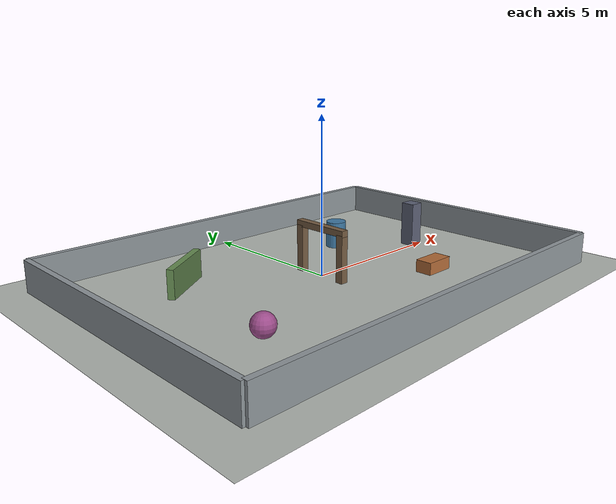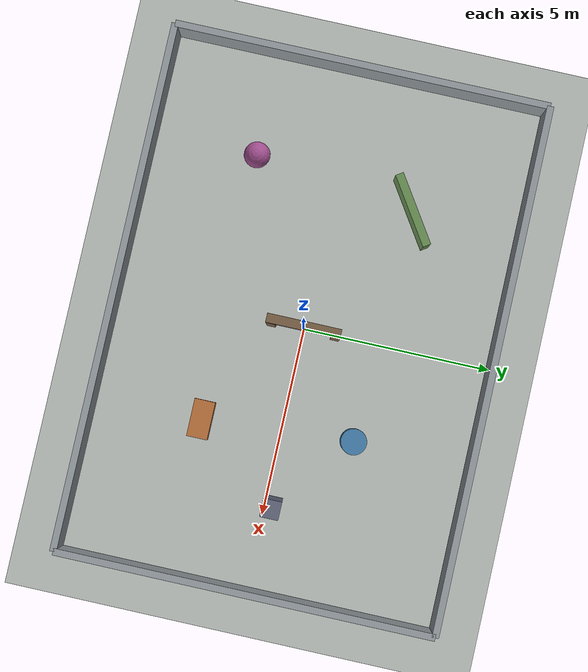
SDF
<?xml version="1.0"?>
<sdf version="1.8">
  <world name="door_passage_test">

    <physics name="default_physics" type="ode">
      <max_step_size>0.002</max_step_size>
      <real_time_factor>1.0</real_time_factor>
    </physics>

    <plugin
      filename="ignition-gazebo-physics-system"
      name="gz::sim::systems::Physics">
    </plugin>
    <plugin
      filename="ignition-gazebo-user-commands-system"
      name="gz::sim::systems::UserCommands">
    </plugin>
    <plugin
      filename="ignition-gazebo-scene-broadcaster-system"
      name="gz::sim::systems::SceneBroadcaster">
    </plugin>
    <plugin
      filename="ignition-gazebo-sensors-system"
      name="gz::sim::systems::Sensors">
      <render_engine>ogre2</render_engine>
    </plugin>

    <!-- Directional sunlight -->
    <light name="sun" type="directional">
      <pose>-3 -4 5 0 0 0</pose>
      <diffuse>0.8 0.8 0.8 1</diffuse>
      <specular>0.2 0.2 0.2 1</specular>
      <direction>0.5 0.6 -1</direction>
    </light>

    <!-- Ground plane with grid pattern -->
    <model name="ground_plane">
      <static>true</static>
      <link name="ground_link">
        <collision name="collision">
          <geometry>
            <plane>
              <normal>0 0 1</normal>
              <size>14 10</size>
            </plane>
          </geometry>
        </collision>
        <visual name="visual">
          <geometry>
            <plane>
              <normal>0 0 1</normal>
              <size>14 10</size>
            </plane>
          </geometry>
          <material>
            <diffuse>0.70 0.72 0.70 1</diffuse>
          </material>
        </visual>
      </link>
    </model>

    <!-- Boundary walls around the enlarged test area. -->
    <model name="boundary_walls">
      <static>true</static>
      <link name="walls_link">
        <collision name="north_wall_collision">
          <pose>0 5.0 0.5 0 0 0</pose>
          <geometry>
            <box>
              <size>14.0 0.18 1.0</size>
            </box>
          </geometry>
        </collision>
        <visual name="north_wall_visual">
          <pose>0 5.0 0.5 0 0 0</pose>
          <geometry>
            <box>
              <size>14.0 0.18 1.0</size>
            </box>
          </geometry>
          <material>
            <ambient>0.42 0.45 0.47 1</ambient>
            <diffuse>0.56 0.59 0.61 1</diffuse>
          </material>
        </visual>

        <collision name="south_wall_collision">
          <pose>0 -5.0 0.5 0 0 0</pose>
          <geometry>
            <box>
              <size>14.0 0.18 1.0</size>
            </box>
          </geometry>
        </collision>
        <visual name="south_wall_visual">
          <pose>0 -5.0 0.5 0 0 0</pose>
          <geometry>
            <box>
              <size>14.0 0.18 1.0</size>
            </box>
          </geometry>
          <material>
            <ambient>0.42 0.45 0.47 1</ambient>
            <diffuse>0.56 0.59 0.61 1</diffuse>
          </material>
        </visual>

        <collision name="east_wall_collision">
          <pose>7.0 0 0.5 0 0 0</pose>
          <geometry>
            <box>
              <size>0.18 10.0 1.0</size>
            </box>
          </geometry>
        </collision>
        <visual name="east_wall_visual">
          <pose>7.0 0 0.5 0 0 0</pose>
          <geometry>
            <box>
              <size>0.18 10.0 1.0</size>
            </box>
          </geometry>
          <material>
            <ambient>0.42 0.45 0.47 1</ambient>
            <diffuse>0.56 0.59 0.61 1</diffuse>
          </material>
        </visual>

        <collision name="west_wall_collision">
          <pose>-7.0 0 0.5 0 0 0</pose>
          <geometry>
            <box>
              <size>0.18 10.0 1.0</size>
            </box>
          </geometry>
        </collision>
        <visual name="west_wall_visual">
          <pose>-7.0 0 0.5 0 0 0</pose>
          <geometry>
            <box>
              <size>0.18 10.0 1.0</size>
            </box>
          </geometry>
          <material>
            <ambient>0.42 0.45 0.47 1</ambient>
            <diffuse>0.56 0.59 0.61 1</diffuse>
          </material>
        </visual>
      </link>
    </model>

    <!--
      Door frame for passage test.
      Opening width: ~1.46 m (posts at ±0.73 m inner edge).
      Opening height: header bottom at ~1.45 m.
    -->
    <model name="door_frame">
      <static>true</static>
      <link name="door_frame_link">
        <!-- Left door post -->
        <collision name="left_post_collision">
          <pose>0 0.85 0.75 0 0 0</pose>
          <geometry>
            <box>
              <size>0.24 0.24 1.50</size>
            </box>
          </geometry>
        </collision>
        <visual name="left_post_visual">
          <pose>0 0.85 0.75 0 0 0</pose>
          <geometry>
            <box>
              <size>0.24 0.24 1.50</size>
            </box>
          </geometry>
          <material>
            <ambient>0.30 0.24 0.16 1</ambient>
            <diffuse>0.46 0.36 0.26 1</diffuse>
          </material>
        </visual>

        <!-- Right door post -->
        <collision name="right_post_collision">
          <pose>0 -0.85 0.75 0 0 0</pose>
          <geometry>
            <box>
              <size>0.24 0.24 1.50</size>
            </box>
          </geometry>
        </collision>
        <visual name="right_post_visual">
          <pose>0 -0.85 0.75 0 0 0</pose>
          <geometry>
            <box>
              <size>0.24 0.24 1.50</size>
            </box>
          </geometry>
          <material>
            <ambient>0.30 0.24 0.16 1</ambient>
            <diffuse>0.46 0.36 0.26 1</diffuse>
          </material>
        </visual>

        <!-- Door header (top beam) -->
        <collision name="header_collision">
          <pose>0 0 1.55 0 0 0</pose>
          <geometry>
            <box>
              <size>0.24 1.94 0.20</size>
            </box>
          </geometry>
        </collision>
        <visual name="header_visual">
          <pose>0 0 1.55 0 0 0</pose>
          <geometry>
            <box>
              <size>0.24 1.94 0.20</size>
            </box>
          </geometry>
          <material>
            <ambient>0.30 0.24 0.16 1</ambient>
            <diffuse>0.46 0.36 0.26 1</diffuse>
          </material>
        </visual>
      </link>
    </model>

    <!-- Mixed static obstacles for visual and collision testing. -->
    <model name="round_column_obstacle">
      <static>true</static>
      <pose>2.6 1.9 0 0 0 0</pose>
      <link name="round_column_link">
        <collision name="collision">
          <pose>0 0 0.45 0 0 0</pose>
          <geometry>
            <cylinder>
              <radius>0.34</radius>
              <length>0.90</length>
            </cylinder>
          </geometry>
        </collision>
        <visual name="visual">
          <pose>0 0 0.45 0 0 0</pose>
          <geometry>
            <cylinder>
              <radius>0.34</radius>
              <length>0.90</length>
            </cylinder>
          </geometry>
          <material>
            <ambient>0.22 0.38 0.50 1</ambient>
            <diffuse>0.25 0.48 0.65 1</diffuse>
          </material>
        </visual>
      </link>
    </model>

    <model name="low_box_obstacle">
      <static>true</static>
      <pose>2.9 -2.1 0 0 0 0</pose>
      <link name="low_box_link">
        <collision name="collision">
          <pose>0 0 0.20 0 0 0</pose>
          <geometry>
            <box>
              <size>1.0 0.55 0.40</size>
            </box>
          </geometry>
        </collision>
        <visual name="visual">
          <pose>0 0 0.20 0 0 0</pose>
          <geometry>
            <box>
              <size>1.0 0.55 0.40</size>
            </box>
          </geometry>
          <material>
            <ambient>0.48 0.30 0.18 1</ambient>
            <diffuse>0.70 0.42 0.22 1</diffuse>
          </material>
        </visual>
      </link>
    </model>

    <model name="diagonal_barrier_obstacle">
      <static>true</static>
      <pose>-3.6 2.1 0 0 0 0.58</pose>
      <link name="diagonal_barrier_link">
        <collision name="collision">
          <pose>0 0 0.45 0 0 0</pose>
          <geometry>
            <box>
              <size>2.0 0.22 0.90</size>
            </box>
          </geometry>
        </collision>
        <visual name="visual">
          <pose>0 0 0.45 0 0 0</pose>
          <geometry>
            <box>
              <size>2.0 0.22 0.90</size>
            </box>
          </geometry>
          <material>
            <ambient>0.28 0.34 0.24 1</ambient>
            <diffuse>0.40 0.55 0.32 1</diffuse>
          </material>
        </visual>
      </link>
    </model>

    <model name="sphere_obstacle">
      <static>true</static>
      <pose>-4.2 -2.2 0 0 0 0</pose>
      <link name="sphere_link">
        <collision name="collision">
          <pose>0 0 0.35 0 0 0</pose>
          <geometry>
            <sphere>
              <radius>0.35</radius>
            </sphere>
          </geometry>
        </collision>
        <visual name="visual">
          <pose>0 0 0.35 0 0 0</pose>
          <geometry>
            <sphere>
              <radius>0.35</radius>
            </sphere>
          </geometry>
          <material>
            <ambient>0.45 0.22 0.40 1</ambient>
            <diffuse>0.62 0.30 0.55 1</diffuse>
          </material>
        </visual>
      </link>
    </model>

    <model name="tall_box_obstacle">
      <static>true</static>
      <pose>4.7 0.2 0 0 0 0</pose>
      <link name="tall_box_link">
        <collision name="collision">
          <pose>0 0 0.75 0 0 0</pose>
          <geometry>
            <box>
              <size>0.48 0.48 1.50</size>
            </box>
          </geometry>
        </collision>
        <visual name="visual">
          <pose>0 0 0.75 0 0 0</pose>
          <geometry>
            <box>
              <size>0.48 0.48 1.50</size>
            </box>
          </geometry>
          <material>
            <ambient>0.24 0.25 0.30 1</ambient>
            <diffuse>0.36 0.38 0.46 1</diffuse>
          </material>
        </visual>
      </link>
    </model>

  </world>
</sdf>
